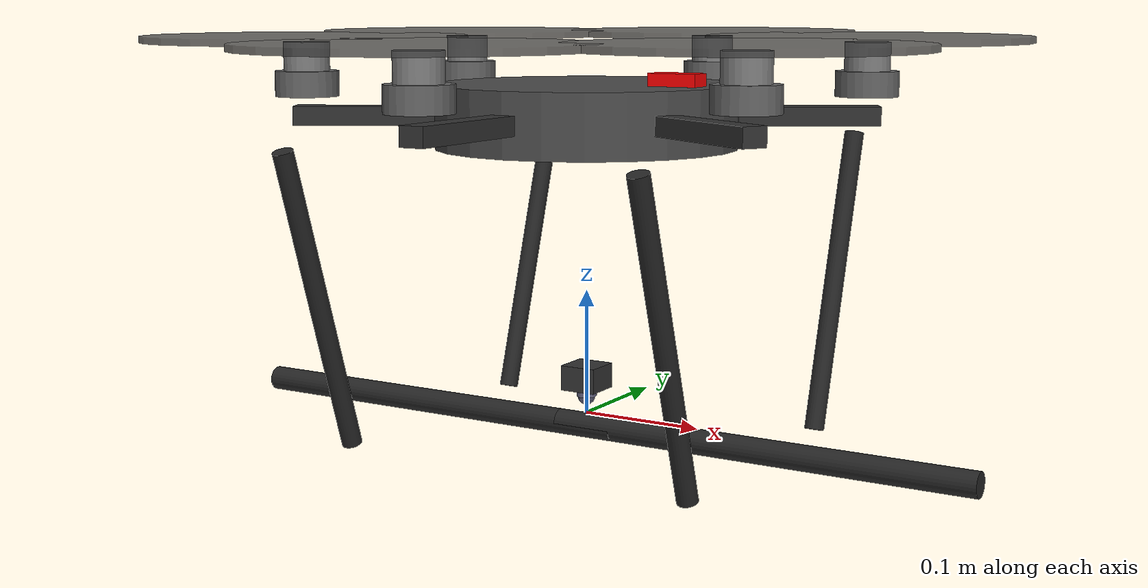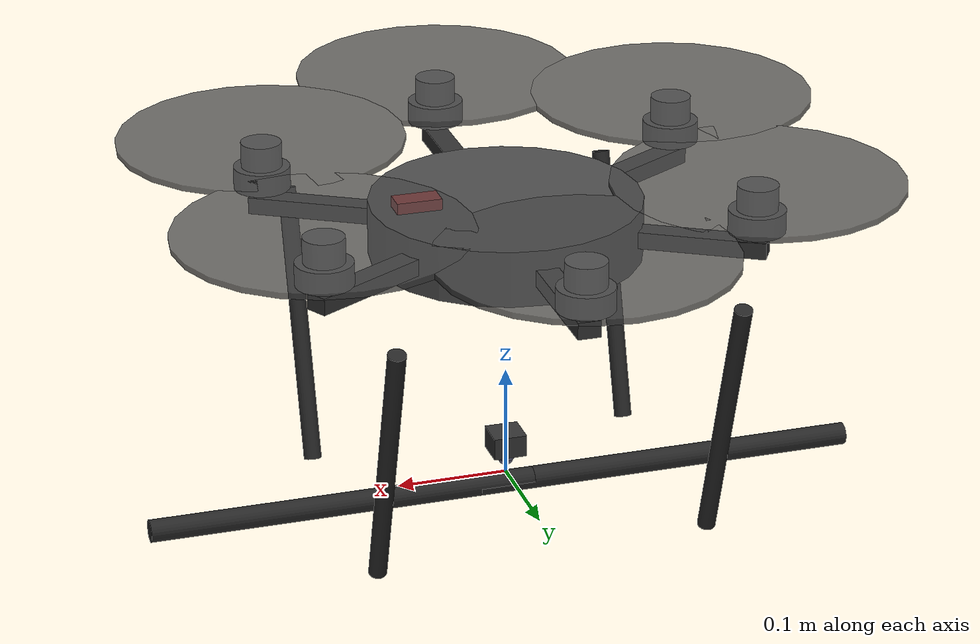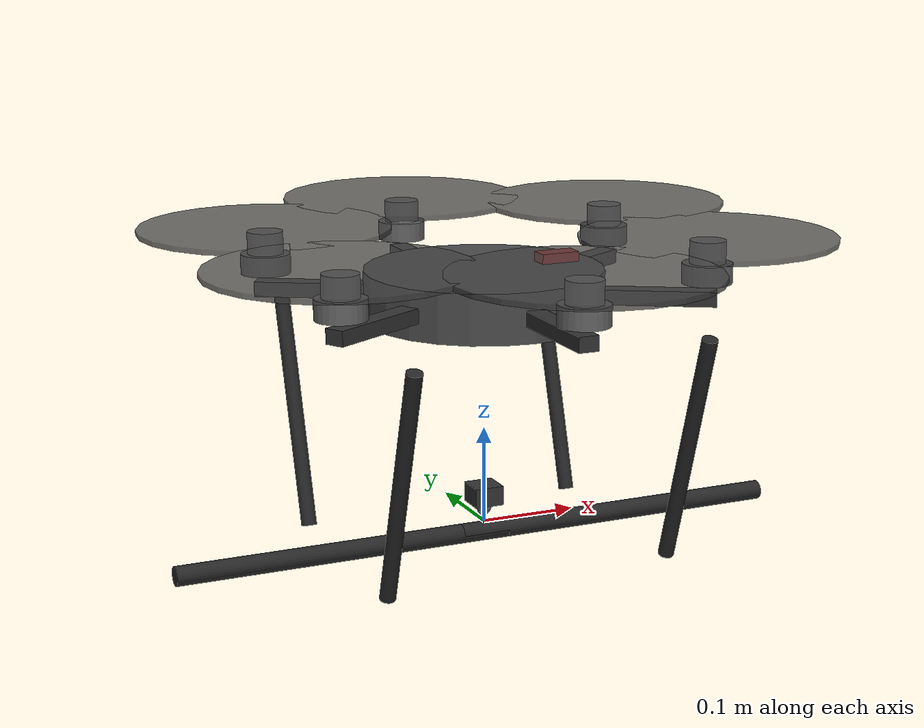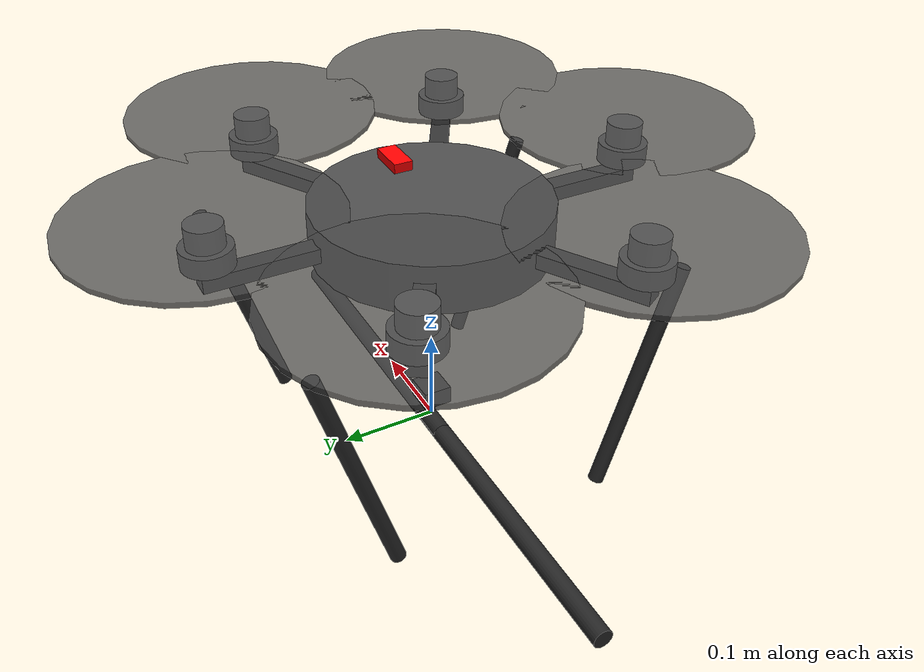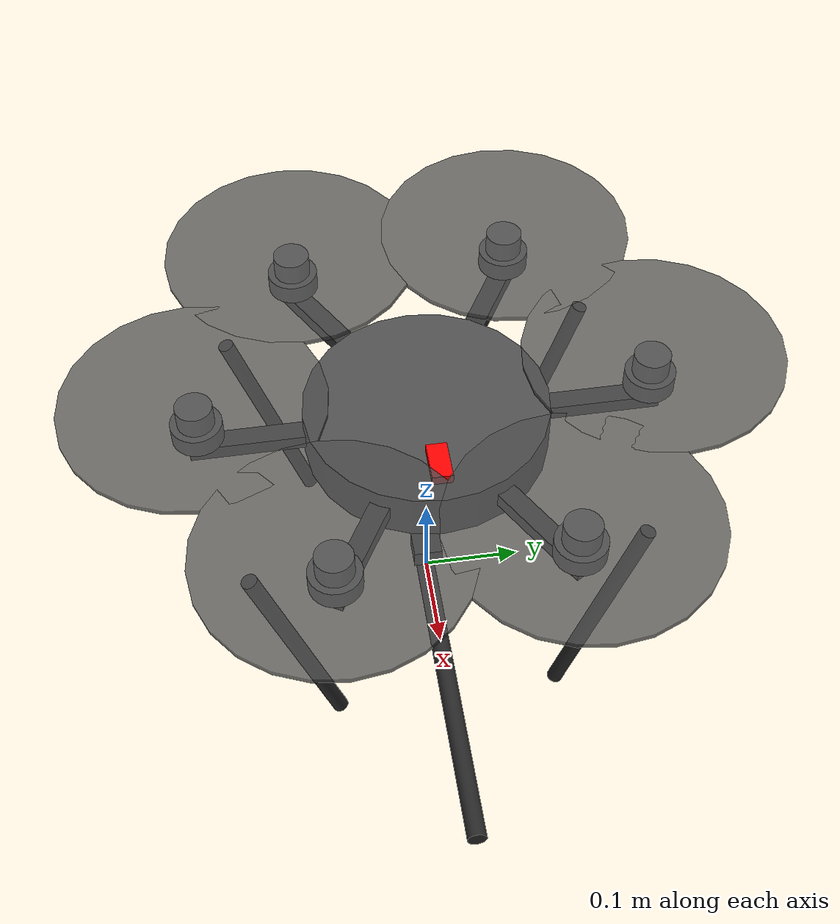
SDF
<?xml version="1.0" encoding="UTF-8"?>
<sdf version='1.9'>
  <model name='h600_vps'>
    <self_collide>false</self_collide>
    <!-- Include the base hexacopter with motors -->
    <include merge='true'>
      <uri>h600</uri>
    </include>
    <!-- Include the VPS camera mounted inside body (above center) -->
    <include merge='true'>
      <uri>model://vps_cam</uri>
      <pose>0 0 0.03 0 0 0</pose>
      <name>vps_cam</name>
    </include>
    <!-- Fixed joint connecting camera to drone body -->
    <joint name="VPSCameraJoint" type="fixed">
      <parent>base_link</parent>
      <child>vps_camera_link</child>
      <pose relative_to="base_link">0 0 0.03 0 0 0</pose>
    </joint>
  </model>
</sdf>

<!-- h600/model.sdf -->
<sdf version='1.9'>
  <model name='h600'>
    <include merge='true'>
      <uri>model://h600_base</uri>
    </include>
    <!-- Motor 0: Front-left - CW (standard hexa-X pattern) -->
    <plugin filename="gz-sim-multicopter-motor-model-system" name="gz::sim::systems::MulticopterMotorModel">
      <jointName>rotor_0_joint</jointName>
      <linkName>rotor_0</linkName>
      <turningDirection>cw</turningDirection>
      <timeConstantUp>0.0125</timeConstantUp>
      <timeConstantDown>0.025</timeConstantDown>
      <maxRotVelocity>1000.0</maxRotVelocity>
      <motorConstant>8.54858e-06</motorConstant>
      <momentConstant>0.016</momentConstant>
      <commandSubTopic>command/motor_speed</commandSubTopic>
      <motorNumber>0</motorNumber>
      <rotorDragCoefficient>8.06428e-05</rotorDragCoefficient>
      <rollingMomentCoefficient>1e-06</rollingMomentCoefficient>
      <rotorVelocitySlowdownSim>10</rotorVelocitySlowdownSim>
      <motorType>velocity</motorType>
    </plugin>
    <!-- Motor 1: Rear-right - CCW -->
    <plugin filename="gz-sim-multicopter-motor-model-system" name="gz::sim::systems::MulticopterMotorModel">
      <jointName>rotor_1_joint</jointName>
      <linkName>rotor_1</linkName>
      <turningDirection>ccw</turningDirection>
      <timeConstantUp>0.0125</timeConstantUp>
      <timeConstantDown>0.025</timeConstantDown>
      <maxRotVelocity>1000.0</maxRotVelocity>
      <motorConstant>8.54858e-06</motorConstant>
      <momentConstant>0.016</momentConstant>
      <commandSubTopic>command/motor_speed</commandSubTopic>
      <motorNumber>1</motorNumber>
      <rotorDragCoefficient>8.06428e-05</rotorDragCoefficient>
      <rollingMomentCoefficient>1e-06</rollingMomentCoefficient>
      <rotorVelocitySlowdownSim>10</rotorVelocitySlowdownSim>
      <motorType>velocity</motorType>
    </plugin>
    <!-- Motor 2: Front-right - CCW (standard hexa-X pattern) -->
    <plugin filename="gz-sim-multicopter-motor-model-system" name="gz::sim::systems::MulticopterMotorModel">
      <jointName>rotor_2_joint</jointName>
      <linkName>rotor_2</linkName>
      <turningDirection>ccw</turningDirection>
      <timeConstantUp>0.0125</timeConstantUp>
      <timeConstantDown>0.025</timeConstantDown>
      <maxRotVelocity>1000.0</maxRotVelocity>
      <motorConstant>8.54858e-06</motorConstant>
      <momentConstant>0.016</momentConstant>
      <commandSubTopic>command/motor_speed</commandSubTopic>
      <motorNumber>2</motorNumber>
      <rotorDragCoefficient>8.06428e-05</rotorDragCoefficient>
      <rollingMomentCoefficient>1e-06</rollingMomentCoefficient>
      <rotorVelocitySlowdownSim>10</rotorVelocitySlowdownSim>
      <motorType>velocity</motorType>
    </plugin>
    <!-- Motor 3: Rear-left - CW -->
    <plugin filename="gz-sim-multicopter-motor-model-system" name="gz::sim::systems::MulticopterMotorModel">
      <jointName>rotor_3_joint</jointName>
      <linkName>rotor_3</linkName>
      <turningDirection>cw</turningDirection>
      <timeConstantUp>0.0125</timeConstantUp>
      <timeConstantDown>0.025</timeConstantDown>
      <maxRotVelocity>1000.0</maxRotVelocity>
      <motorConstant>8.54858e-06</motorConstant>
      <momentConstant>0.016</momentConstant>
      <commandSubTopic>command/motor_speed</commandSubTopic>
      <motorNumber>3</motorNumber>
      <rotorDragCoefficient>8.06428e-05</rotorDragCoefficient>
      <rollingMomentCoefficient>1e-06</rollingMomentCoefficient>
      <rotorVelocitySlowdownSim>10</rotorVelocitySlowdownSim>
      <motorType>velocity</motorType>
    </plugin>
    <!-- Motor 4: Left - CCW -->
    <plugin filename="gz-sim-multicopter-motor-model-system" name="gz::sim::systems::MulticopterMotorModel">
      <jointName>rotor_4_joint</jointName>
      <linkName>rotor_4</linkName>
      <turningDirection>ccw</turningDirection>
      <timeConstantUp>0.0125</timeConstantUp>
      <timeConstantDown>0.025</timeConstantDown>
      <maxRotVelocity>1000.0</maxRotVelocity>
      <motorConstant>8.54858e-06</motorConstant>
      <momentConstant>0.016</momentConstant>
      <commandSubTopic>command/motor_speed</commandSubTopic>
      <motorNumber>4</motorNumber>
      <rotorDragCoefficient>8.06428e-05</rotorDragCoefficient>
      <rollingMomentCoefficient>1e-06</rollingMomentCoefficient>
      <rotorVelocitySlowdownSim>10</rotorVelocitySlowdownSim>
      <motorType>velocity</motorType>
    </plugin>
    <!-- Motor 5: Right - CW -->
    <plugin filename="gz-sim-multicopter-motor-model-system" name="gz::sim::systems::MulticopterMotorModel">
      <jointName>rotor_5_joint</jointName>
      <linkName>rotor_5</linkName>
      <turningDirection>cw</turningDirection>
      <timeConstantUp>0.0125</timeConstantUp>
      <timeConstantDown>0.025</timeConstantDown>
      <maxRotVelocity>1000.0</maxRotVelocity>
      <motorConstant>8.54858e-06</motorConstant>
      <momentConstant>0.016</momentConstant>
      <commandSubTopic>command/motor_speed</commandSubTopic>
      <motorNumber>5</motorNumber>
      <rotorDragCoefficient>8.06428e-05</rotorDragCoefficient>
      <rollingMomentCoefficient>1e-06</rollingMomentCoefficient>
      <rotorVelocitySlowdownSim>10</rotorVelocitySlowdownSim>
      <motorType>velocity</motorType>
    </plugin>
  </model>
</sdf>

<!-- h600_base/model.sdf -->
<sdf version='1.9'>
  <model name='h600_base'>
    <pose>0 0 .24 0 0 0</pose>
    <self_collide>false</self_collide>
    <static>false</static>
    <link name="base_link">
      <inertial>
        <mass>2.5</mass>
        <inertia>
          <ixx>0.035</ixx>
          <ixy>0</ixy>
          <ixz>0</ixz>
          <iyy>0.035</iyy>
          <iyz>0</iyz>
          <izz>0.06</izz>
        </inertia>
      </inertial>
      <gravity>true</gravity>
      <velocity_decay/>
      <!-- Central body - hexagonal frame representation -->
      <visual name="base_link_visual">
        <pose>0 0 0 0 0 0</pose>
        <geometry>
          <cylinder>
            <radius>0.12</radius>
            <length>0.05</length>
          </cylinder>
        </geometry>
        <material>
          <ambient>0.2 0.2 0.2 1</ambient>
          <diffuse>0.3 0.3 0.3 1</diffuse>
        </material>
      </visual>
      <!-- Arms - 6 arms at 60 degree intervals -->
      <!-- Arm 0: Front right (30 deg) -->
      <visual name="arm_0">
        <pose>0.095 -0.055 0 0 0 -0.5236</pose>
        <geometry>
          <box>
            <size>0.24 0.02 0.015</size>
          </box>
        </geometry>
        <material>
          <ambient>0.1 0.1 0.1 1</ambient>
          <diffuse>0.2 0.2 0.2 1</diffuse>
        </material>
      </visual>
      <!-- Arm 1: Rear left (150 deg) -->
      <visual name="arm_1">
        <pose>-0.095 0.055 0 0 0 -0.5236</pose>
        <geometry>
          <box>
            <size>0.24 0.02 0.015</size>
          </box>
        </geometry>
        <material>
          <ambient>0.1 0.1 0.1 1</ambient>
          <diffuse>0.2 0.2 0.2 1</diffuse>
        </material>
      </visual>
      <!-- Arm 2: Front left (150 deg mirror) -->
      <visual name="arm_2">
        <pose>0.095 0.055 0 0 0 0.5236</pose>
        <geometry>
          <box>
            <size>0.24 0.02 0.015</size>
          </box>
        </geometry>
        <material>
          <ambient>0.1 0.1 0.1 1</ambient>
          <diffuse>0.2 0.2 0.2 1</diffuse>
        </material>
      </visual>
      <!-- Arm 3: Rear right (-150 deg) -->
      <visual name="arm_3">
        <pose>-0.095 -0.055 0 0 0 0.5236</pose>
        <geometry>
          <box>
            <size>0.24 0.02 0.015</size>
          </box>
        </geometry>
        <material>
          <ambient>0.1 0.1 0.1 1</ambient>
          <diffuse>0.2 0.2 0.2 1</diffuse>
        </material>
      </visual>
      <!-- Arm 4: Right (90 deg) -->
      <visual name="arm_4">
        <pose>0 -0.11 0 0 0 1.5708</pose>
        <geometry>
          <box>
            <size>0.24 0.02 0.015</size>
          </box>
        </geometry>
        <material>
          <ambient>0.1 0.1 0.1 1</ambient>
          <diffuse>0.2 0.2 0.2 1</diffuse>
        </material>
      </visual>
      <!-- Arm 5: Left (-90 deg) -->
      <visual name="arm_5">
        <pose>0 0.11 0 0 0 1.5708</pose>
        <geometry>
          <box>
            <size>0.24 0.02 0.015</size>
          </box>
        </geometry>
        <material>
          <ambient>0.1 0.1 0.1 1</ambient>
          <diffuse>0.2 0.2 0.2 1</diffuse>
        </material>
      </visual>
      <!-- Motor bases -->
      <visual name="motor_base_0">
        <pose>0.19 -0.11 0.025 0 0 0</pose>
        <geometry>
          <cylinder>
            <radius>0.025</radius>
            <length>0.02</length>
          </cylinder>
        </geometry>
        <material>
          <ambient>0.3 0.3 0.3 1</ambient>
          <diffuse>0.4 0.4 0.4 1</diffuse>
        </material>
      </visual>
      <visual name="motor_base_1">
        <pose>-0.19 0.11 0.025 0 0 0</pose>
        <geometry>
          <cylinder>
            <radius>0.025</radius>
            <length>0.02</length>
          </cylinder>
        </geometry>
        <material>
          <ambient>0.3 0.3 0.3 1</ambient>
          <diffuse>0.4 0.4 0.4 1</diffuse>
        </material>
      </visual>
      <visual name="motor_base_2">
        <pose>0.19 0.11 0.025 0 0 0</pose>
        <geometry>
          <cylinder>
            <radius>0.025</radius>
            <length>0.02</length>
          </cylinder>
        </geometry>
        <material>
          <ambient>0.3 0.3 0.3 1</ambient>
          <diffuse>0.4 0.4 0.4 1</diffuse>
        </material>
      </visual>
      <visual name="motor_base_3">
        <pose>-0.19 -0.11 0.025 0 0 0</pose>
        <geometry>
          <cylinder>
            <radius>0.025</radius>
            <length>0.02</length>
          </cylinder>
        </geometry>
        <material>
          <ambient>0.3 0.3 0.3 1</ambient>
          <diffuse>0.4 0.4 0.4 1</diffuse>
        </material>
      </visual>
      <visual name="motor_base_4">
        <pose>0 -0.22 0.025 0 0 0</pose>
        <geometry>
          <cylinder>
            <radius>0.025</radius>
            <length>0.02</length>
          </cylinder>
        </geometry>
        <material>
          <ambient>0.3 0.3 0.3 1</ambient>
          <diffuse>0.4 0.4 0.4 1</diffuse>
        </material>
      </visual>
      <visual name="motor_base_5">
        <pose>0 0.22 0.025 0 0 0</pose>
        <geometry>
          <cylinder>
            <radius>0.025</radius>
            <length>0.02</length>
          </cylinder>
        </geometry>
        <material>
          <ambient>0.3 0.3 0.3 1</ambient>
          <diffuse>0.4 0.4 0.4 1</diffuse>
        </material>
      </visual>
      <!-- Front direction indicator (red) -->
      <visual name="front_indicator">
        <pose>0.08 0 0.03 0 0 0</pose>
        <geometry>
          <box>
            <size>0.04 0.02 0.01</size>
          </box>
        </geometry>
        <material>
          <ambient>1 0 0 1</ambient>
          <diffuse>1 0 0 1</diffuse>
        </material>
      </visual>
      <!-- Landing gear legs - wider stance -->
      <visual name="landing_leg_1">
        <pose>0.15 -0.15 -0.14 0.3 0 0</pose>
        <geometry>
          <cylinder>
            <radius>0.008</radius>
            <length>0.25</length>
          </cylinder>
        </geometry>
        <material>
          <ambient>0.1 0.1 0.1 1</ambient>
          <diffuse>0.15 0.15 0.15 1</diffuse>
        </material>
      </visual>
      <visual name="landing_leg_2">
        <pose>0.15 0.15 -0.14 -0.3 0 0</pose>
        <geometry>
          <cylinder>
            <radius>0.008</radius>
            <length>0.25</length>
          </cylinder>
        </geometry>
        <material>
          <ambient>0.1 0.1 0.1 1</ambient>
          <diffuse>0.15 0.15 0.15 1</diffuse>
        </material>
      </visual>
      <visual name="landing_leg_3">
        <pose>-0.15 -0.15 -0.14 0.3 0 0</pose>
        <geometry>
          <cylinder>
            <radius>0.008</radius>
            <length>0.25</length>
          </cylinder>
        </geometry>
        <material>
          <ambient>0.1 0.1 0.1 1</ambient>
          <diffuse>0.15 0.15 0.15 1</diffuse>
        </material>
      </visual>
      <visual name="landing_leg_4">
        <pose>-0.15 0.15 -0.14 -0.3 0 0</pose>
        <geometry>
          <cylinder>
            <radius>0.008</radius>
            <length>0.25</length>
          </cylinder>
        </geometry>
        <material>
          <ambient>0.1 0.1 0.1 1</ambient>
          <diffuse>0.15 0.15 0.15 1</diffuse>
        </material>
      </visual>
      <!-- Landing skids - wider spread -->
      <visual name="landing_skid_front">
        <pose>0.15 0 -0.25 0 1.5708 0</pose>
        <geometry>
          <cylinder>
            <radius>0.01</radius>
            <length>0.35</length>
          </cylinder>
        </geometry>
        <material>
          <ambient>0.1 0.1 0.1 1</ambient>
          <diffuse>0.15 0.15 0.15 1</diffuse>
        </material>
      </visual>
      <visual name="landing_skid_rear">
        <pose>-0.15 0 -0.25 0 1.5708 0</pose>
        <geometry>
          <cylinder>
            <radius>0.01</radius>
            <length>0.35</length>
          </cylinder>
        </geometry>
        <material>
          <ambient>0.1 0.1 0.1 1</ambient>
          <diffuse>0.15 0.15 0.15 1</diffuse>
        </material>
      </visual>
      <!-- Collision geometry -->
      <collision name="base_link_collision">
        <pose>0 0 0 0 0 0</pose>
        <geometry>
          <cylinder>
            <radius>0.25</radius>
            <length>0.05</length>
          </cylinder>
        </geometry>
        <surface>
          <contact>
            <ode>
              <min_depth>0.001</min_depth>
              <max_vel>0</max_vel>
            </ode>
          </contact>
          <friction>
            <ode/>
          </friction>
        </surface>
      </collision>
      <!-- Landing leg collisions - 4 corner contact points (skid collisions removed to prevent interpenetration) -->
      <collision name="landing_leg_collision_1">
        <pose>0.15 -0.15 -0.14 0.3 0 0</pose>
        <geometry>
          <cylinder>
            <radius>0.01</radius>
            <length>0.25</length>
          </cylinder>
        </geometry>
        <surface>
          <contact>
            <ode>
              <min_depth>0.001</min_depth>
              <max_vel>0</max_vel>
            </ode>
          </contact>
          <friction>
            <ode/>
          </friction>
        </surface>
      </collision>
      <collision name="landing_leg_collision_2">
        <pose>0.15 0.15 -0.14 -0.3 0 0</pose>
        <geometry>
          <cylinder>
            <radius>0.01</radius>
            <length>0.25</length>
          </cylinder>
        </geometry>
        <surface>
          <contact>
            <ode>
              <min_depth>0.001</min_depth>
              <max_vel>0</max_vel>
            </ode>
          </contact>
          <friction>
            <ode/>
          </friction>
        </surface>
      </collision>
      <collision name="landing_leg_collision_3">
        <pose>-0.15 -0.15 -0.14 0.3 0 0</pose>
        <geometry>
          <cylinder>
            <radius>0.01</radius>
            <length>0.25</length>
          </cylinder>
        </geometry>
        <surface>
          <contact>
            <ode>
              <min_depth>0.001</min_depth>
              <max_vel>0</max_vel>
            </ode>
          </contact>
          <friction>
            <ode/>
          </friction>
        </surface>
      </collision>
      <collision name="landing_leg_collision_4">
        <pose>-0.15 0.15 -0.14 -0.3 0 0</pose>
        <geometry>
          <cylinder>
            <radius>0.01</radius>
            <length>0.25</length>
          </cylinder>
        </geometry>
        <surface>
          <contact>
            <ode>
              <min_depth>0.001</min_depth>
              <max_vel>0</max_vel>
            </ode>
          </contact>
          <friction>
            <ode/>
          </friction>
        </surface>
      </collision>
      <!-- Sensors -->
      <sensor name="air_pressure_sensor" type="air_pressure">
        <always_on>1</always_on>
        <update_rate>50</update_rate>
        <air_pressure>
          <pressure>
            <noise type="gaussian">
              <mean>0</mean>
              <stddev>3</stddev>
            </noise>
          </pressure>
        </air_pressure>
      </sensor>
      <sensor name="magnetometer_sensor" type="magnetometer">
        <always_on>1</always_on>
        <update_rate>100</update_rate>
        <magnetometer>
          <x>
            <noise type="gaussian">
              <stddev>0.0001</stddev>
            </noise>
          </x>
          <y>
            <noise type="gaussian">
              <stddev>0.0001</stddev>
            </noise>
          </y>
          <z>
            <noise type="gaussian">
              <stddev>0.0001</stddev>
            </noise>
          </z>
        </magnetometer>
      </sensor>
      <sensor name="imu_sensor" type="imu">
        <always_on>1</always_on>
        <update_rate>250</update_rate>
        <imu>
          <angular_velocity>
            <x>
              <noise type="gaussian">
                <mean>0.0</mean>
                <stddev>0.0008726646</stddev>
              </noise>
            </x>
            <y>
              <noise type="gaussian">
                <mean>0.0</mean>
                <stddev>0.0008726646</stddev>
              </noise>
            </y>
            <z>
              <noise type="gaussian">
                <mean>0.0</mean>
                <stddev>0.0008726646</stddev>
              </noise>
            </z>
          </angular_velocity>
          <linear_acceleration>
            <x>
              <noise type="gaussian">
                <mean>0.0</mean>
                <stddev>0.00637</stddev>
              </noise>
            </x>
            <y>
              <noise type="gaussian">
                <mean>0.0</mean>
                <stddev>0.00637</stddev>
              </noise>
            </y>
            <z>
              <noise type="gaussian">
                <mean>0.0</mean>
                <stddev>0.00686</stddev>
              </noise>
            </z>
          </linear_acceleration>
        </imu>
      </sensor>
      <sensor name="navsat_sensor" type="navsat">
        <always_on>1</always_on>
        <update_rate>30</update_rate>
      </sensor>
    </link>

    <!-- Rotor 0: Front right - CCW -->
    <link name="rotor_0">
      <gravity>true</gravity>
      <self_collide>false</self_collide>
      <velocity_decay/>
      <pose>0.19 -0.11 0.06 0 0 0</pose>
      <inertial>
          <mass>0.016076923076923075</mass>
          <inertia>
            <ixx>3.8464910483993325e-07</ixx>
            <ixy>0</ixy>
            <ixz>0</ixz>
            <iyy>2.6115851691700804e-05</iyy>
            <iyz>0</iyz>
            <izz>2.649858234714004e-05</izz>
          </inertia>
        </inertial>
      <visual name="rotor_0_visual">
        <pose>0 0 0 0 0 0</pose>
        <geometry>
          <cylinder>
            <radius>0.127</radius>
            <length>0.005</length>
          </cylinder>
        </geometry>
        <material>
          <ambient>0.2 0.2 0.2 0.8</ambient>
          <diffuse>0.3 0.3 0.3 0.8</diffuse>
        </material>
      </visual>
      <visual name="rotor_0_motor_bell">
        <pose>0 0 -0.015 0 0 0</pose>
        <geometry>
          <cylinder>
            <radius>0.018</radius>
            <length>0.025</length>
          </cylinder>
        </geometry>
        <material>
          <ambient>0.4 0.4 0.4 1</ambient>
          <diffuse>0.5 0.5 0.5 1</diffuse>
        </material>
      </visual>
      <collision name="rotor_0_collision">
        <pose>0 0 0 0 0 0</pose>
        <geometry>
          <cylinder>
            <radius>0.127</radius>
            <length>0.005</length>
          </cylinder>
        </geometry>
      </collision>
    </link>
    <joint name="rotor_0_joint" type="revolute">
      <parent>base_link</parent>
      <child>rotor_0</child>
      <axis>
        <xyz>0 0 1</xyz>
        <limit>
          <lower>-1e+16</lower>
          <upper>1e+16</upper>
        </limit>
        <dynamics>
          <spring_reference>0</spring_reference>
          <spring_stiffness>0</spring_stiffness>
        </dynamics>
      </axis>
    </joint>

    <!-- Rotor 1: Rear left - CCW -->
    <link name="rotor_1">
      <gravity>true</gravity>
      <self_collide>false</self_collide>
      <velocity_decay/>
      <pose>-0.19 0.11 0.06 0 0 0</pose>
      <inertial>
          <mass>0.016076923076923075</mass>
          <inertia>
            <ixx>3.8464910483993325e-07</ixx>
            <ixy>0</ixy>
            <ixz>0</ixz>
            <iyy>2.6115851691700804e-05</iyy>
            <iyz>0</iyz>
            <izz>2.649858234714004e-05</izz>
          </inertia>
        </inertial>
      <visual name="rotor_1_visual">
        <pose>0 0 0 0 0 0</pose>
        <geometry>
          <cylinder>
            <radius>0.127</radius>
            <length>0.005</length>
          </cylinder>
        </geometry>
        <material>
          <ambient>0.2 0.2 0.2 0.8</ambient>
          <diffuse>0.3 0.3 0.3 0.8</diffuse>
        </material>
      </visual>
      <visual name="rotor_1_motor_bell">
        <pose>0 0 -0.015 0 0 0</pose>
        <geometry>
          <cylinder>
            <radius>0.018</radius>
            <length>0.025</length>
          </cylinder>
        </geometry>
        <material>
          <ambient>0.4 0.4 0.4 1</ambient>
          <diffuse>0.5 0.5 0.5 1</diffuse>
        </material>
      </visual>
      <collision name="rotor_1_collision">
        <pose>0 0 0 0 0 0</pose>
        <geometry>
          <cylinder>
            <radius>0.127</radius>
            <length>0.005</length>
          </cylinder>
        </geometry>
      </collision>
    </link>
    <joint name="rotor_1_joint" type="revolute">
      <parent>base_link</parent>
      <child>rotor_1</child>
      <axis>
        <xyz>0 0 1</xyz>
        <limit>
          <lower>-1e+16</lower>
          <upper>1e+16</upper>
        </limit>
        <dynamics>
          <spring_reference>0</spring_reference>
          <spring_stiffness>0</spring_stiffness>
        </dynamics>
      </axis>
    </joint>

    <!-- Rotor 2: Front left - CW -->
    <link name="rotor_2">
      <gravity>true</gravity>
      <self_collide>false</self_collide>
      <velocity_decay/>
      <pose>0.19 0.11 0.06 0 0 0</pose>
      <inertial>
          <mass>0.016076923076923075</mass>
          <inertia>
            <ixx>3.8464910483993325e-07</ixx>
            <ixy>0</ixy>
            <ixz>0</ixz>
            <iyy>2.6115851691700804e-05</iyy>
            <iyz>0</iyz>
            <izz>2.649858234714004e-05</izz>
          </inertia>
        </inertial>
      <visual name="rotor_2_visual">
        <pose>0 0 0 0 0 0</pose>
        <geometry>
          <cylinder>
            <radius>0.127</radius>
            <length>0.005</length>
          </cylinder>
        </geometry>
        <material>
          <ambient>0.2 0.2 0.2 0.8</ambient>
          <diffuse>0.3 0.3 0.3 0.8</diffuse>
        </material>
      </visual>
      <visual name="rotor_2_motor_bell">
        <pose>0 0 -0.015 0 0 0</pose>
        <geometry>
          <cylinder>
            <radius>0.018</radius>
            <length>0.025</length>
          </cylinder>
        </geometry>
        <material>
          <ambient>0.4 0.4 0.4 1</ambient>
          <diffuse>0.5 0.5 0.5 1</diffuse>
        </material>
      </visual>
      <collision name="rotor_2_collision">
        <pose>0 0 0 0 0 0</pose>
        <geometry>
          <cylinder>
            <radius>0.127</radius>
            <length>0.005</length>
          </cylinder>
        </geometry>
      </collision>
    </link>
    <joint name="rotor_2_joint" type="revolute">
      <parent>base_link</parent>
      <child>rotor_2</child>
      <axis>
        <xyz>0 0 1</xyz>
        <limit>
          <lower>-1e+16</lower>
          <upper>1e+16</upper>
        </limit>
        <dynamics>
          <spring_reference>0</spring_reference>
          <spring_stiffness>0</spring_stiffness>
        </dynamics>
      </axis>
    </joint>

    <!-- Rotor 3: Rear right - CW -->
    <link name="rotor_3">
      <gravity>true</gravity>
      <self_collide>false</self_collide>
      <velocity_decay/>
      <pose>-0.19 -0.11 0.06 0 0 0</pose>
      <inertial>
          <mass>0.016076923076923075</mass>
          <inertia>
            <ixx>3.8464910483993325e-07</ixx>
            <ixy>0</ixy>
            <ixz>0</ixz>
            <iyy>2.6115851691700804e-05</iyy>
            <iyz>0</iyz>
            <izz>2.649858234714004e-05</izz>
          </inertia>
        </inertial>
      <visual name="rotor_3_visual">
        <pose>0 0 0 0 0 0</pose>
        <geometry>
          <cylinder>
            <radius>0.127</radius>
            <length>0.005</length>
          </cylinder>
        </geometry>
        <material>
          <ambient>0.2 0.2 0.2 0.8</ambient>
          <diffuse>0.3 0.3 0.3 0.8</diffuse>
        </material>
      </visual>
      <visual name="rotor_3_motor_bell">
        <pose>0 0 -0.015 0 0 0</pose>
        <geometry>
          <cylinder>
            <radius>0.018</radius>
            <length>0.025</length>
          </cylinder>
        </geometry>
        <material>
          <ambient>0.4 0.4 0.4 1</ambient>
          <diffuse>0.5 0.5 0.5 1</diffuse>
        </material>
      </visual>
      <collision name="rotor_3_collision">
        <pose>0 0 0 0 0 0</pose>
        <geometry>
          <cylinder>
            <radius>0.127</radius>
            <length>0.005</length>
          </cylinder>
        </geometry>
      </collision>
    </link>
    <joint name="rotor_3_joint" type="revolute">
      <parent>base_link</parent>
      <child>rotor_3</child>
      <axis>
        <xyz>0 0 1</xyz>
        <limit>
          <lower>-1e+16</lower>
          <upper>1e+16</upper>
        </limit>
        <dynamics>
          <spring_reference>0</spring_reference>
          <spring_stiffness>0</spring_stiffness>
        </dynamics>
      </axis>
    </joint>

    <!-- Rotor 4: Right - CCW -->
    <link name="rotor_4">
      <gravity>true</gravity>
      <self_collide>false</self_collide>
      <velocity_decay/>
      <pose>0 -0.22 0.06 0 0 0</pose>
      <inertial>
          <mass>0.016076923076923075</mass>
          <inertia>
            <ixx>3.8464910483993325e-07</ixx>
            <ixy>0</ixy>
            <ixz>0</ixz>
            <iyy>2.6115851691700804e-05</iyy>
            <iyz>0</iyz>
            <izz>2.649858234714004e-05</izz>
          </inertia>
        </inertial>
      <visual name="rotor_4_visual">
        <pose>0 0 0 0 0 0</pose>
        <geometry>
          <cylinder>
            <radius>0.127</radius>
            <length>0.005</length>
          </cylinder>
        </geometry>
        <material>
          <ambient>0.2 0.2 0.2 0.8</ambient>
          <diffuse>0.3 0.3 0.3 0.8</diffuse>
        </material>
      </visual>
      <visual name="rotor_4_motor_bell">
        <pose>0 0 -0.015 0 0 0</pose>
        <geometry>
          <cylinder>
            <radius>0.018</radius>
            <length>0.025</length>
          </cylinder>
        </geometry>
        <material>
          <ambient>0.4 0.4 0.4 1</ambient>
          <diffuse>0.5 0.5 0.5 1</diffuse>
        </material>
      </visual>
      <collision name="rotor_4_collision">
        <pose>0 0 0 0 0 0</pose>
        <geometry>
          <cylinder>
            <radius>0.127</radius>
            <length>0.005</length>
          </cylinder>
        </geometry>
      </collision>
    </link>
    <joint name="rotor_4_joint" type="revolute">
      <parent>base_link</parent>
      <child>rotor_4</child>
      <axis>
        <xyz>0 0 1</xyz>
        <limit>
          <lower>-1e+16</lower>
          <upper>1e+16</upper>
        </limit>
        <dynamics>
          <spring_reference>0</spring_reference>
          <spring_stiffness>0</spring_stiffness>
        </dynamics>
      </axis>
    </joint>

    <!-- Rotor 5: Left - CW -->
    <link name="rotor_5">
      <gravity>true</gravity>
      <self_collide>false</self_collide>
      <velocity_decay/>
      <pose>0 0.22 0.06 0 0 0</pose>
      <inertial>
          <mass>0.016076923076923075</mass>
          <inertia>
            <ixx>3.8464910483993325e-07</ixx>
            <ixy>0</ixy>
            <ixz>0</ixz>
            <iyy>2.6115851691700804e-05</iyy>
            <iyz>0</iyz>
            <izz>2.649858234714004e-05</izz>
          </inertia>
        </inertial>
      <visual name="rotor_5_visual">
        <pose>0 0 0 0 0 0</pose>
        <geometry>
          <cylinder>
            <radius>0.127</radius>
            <length>0.005</length>
          </cylinder>
        </geometry>
        <material>
          <ambient>0.2 0.2 0.2 0.8</ambient>
          <diffuse>0.3 0.3 0.3 0.8</diffuse>
        </material>
      </visual>
      <visual name="rotor_5_motor_bell">
        <pose>0 0 -0.015 0 0 0</pose>
        <geometry>
          <cylinder>
            <radius>0.018</radius>
            <length>0.025</length>
          </cylinder>
        </geometry>
        <material>
          <ambient>0.4 0.4 0.4 1</ambient>
          <diffuse>0.5 0.5 0.5 1</diffuse>
        </material>
      </visual>
      <collision name="rotor_5_collision">
        <pose>0 0 0 0 0 0</pose>
        <geometry>
          <cylinder>
            <radius>0.127</radius>
            <length>0.005</length>
          </cylinder>
        </geometry>
      </collision>
    </link>
    <joint name="rotor_5_joint" type="revolute">
      <parent>base_link</parent>
      <child>rotor_5</child>
      <axis>
        <xyz>0 0 1</xyz>
        <limit>
          <lower>-1e+16</lower>
          <upper>1e+16</upper>
        </limit>
        <dynamics>
          <spring_reference>0</spring_reference>
          <spring_stiffness>0</spring_stiffness>
        </dynamics>
      </axis>
    </joint>
  </model>
</sdf>

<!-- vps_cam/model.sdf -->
<sdf version='1.9'>
  <model name='vps_cam'>
    <pose>0 0 0 0 0 0</pose>
    <self_collide>false</self_collide>
    <static>false</static>
    <link name="vps_camera_link">
      <inertial>
        <pose>0.02 0.02 0.02 0 0 0</pose>
        <mass>0.030</mass>
        <inertia>
          <ixx>0.00002</ixx>
          <ixy>0</ixy>
          <ixz>0</ixz>
          <iyy>0.00002</iyy>
          <iyz>0</iyz>
          <izz>0.00002</izz>
        </inertia>
      </inertial>
      <!-- Camera housing -->
      <visual name="vps_cam/visual/housing">
        <geometry>
          <box>
            <size>0.03 0.03 0.02</size>
          </box>
        </geometry>
        <material>
          <ambient>0.1 0.1 0.1 1</ambient>
          <diffuse>0.2 0.2 0.2 1</diffuse>
        </material>
      </visual>
      <!-- Camera lens (pointing down) -->
      <visual name="vps_cam/visual/lens">
        <pose>0 0 -0.012 0 0 0</pose>
        <geometry>
          <cylinder>
            <radius>0.008</radius>
            <length>0.008</length>
          </cylinder>
        </geometry>
        <material>
          <ambient>0.3 0.3 0.4 1</ambient>
          <diffuse>0.4 0.4 0.5 1</diffuse>
        </material>
      </visual>
      <!-- Lens glass -->
      <visual name="vps_cam/visual/lens_glass">
        <pose>0 0 -0.016 0 0 0</pose>
        <geometry>
          <sphere>
            <radius>0.007</radius>
          </sphere>
        </geometry>
        <material>
          <ambient>0.4 0.4 0.5 0.95</ambient>
          <diffuse>0.4 0.4 0.5 0.95</diffuse>
          <specular>1 1 1 1</specular>
          <emissive>0 0 0 1</emissive>
        </material>
      </visual>
      <!-- Status LED -->
      <visual name="vps_cam/visual/led">
        <pose>0.01 0 0.008 0 0 0</pose>
        <geometry>
          <sphere>
            <radius>0.002</radius>
          </sphere>
        </geometry>
        <material>
          <ambient>0 1 0 1</ambient>
          <diffuse>0 1 0 1</diffuse>
          <emissive>0 0.5 0 1</emissive>
        </material>
      </visual>
      <!-- Downward-facing VPS camera sensor -->
      <sensor name="vps_camera" type="camera">
        <pose>0 0 0 0 1.5707963 0</pose>
        <camera>
          <horizontal_fov>1.396</horizontal_fov>
          <image>
            <width>640</width>
            <height>480</height>
            <format>R8G8B8</format>
          </image>
          <clip>
            <near>0.05</near>
            <far>100</far>
          </clip>
          <noise>
            <type>gaussian</type>
            <mean>0.0</mean>
            <stddev>0.007</stddev>
          </noise>
        </camera>
        <always_on>1</always_on>
        <update_rate>30</update_rate>
        <visualize>true</visualize>
        <topic>vps_camera</topic>
      </sensor>
      <gravity>true</gravity>
      <velocity_decay/>
    </link>
  </model>
</sdf>
